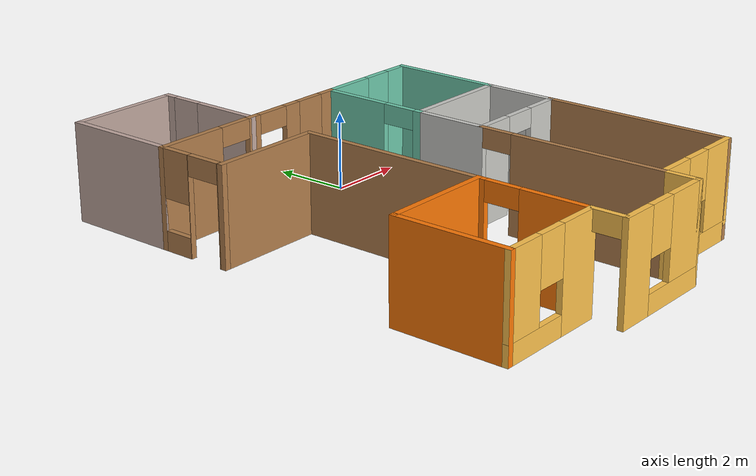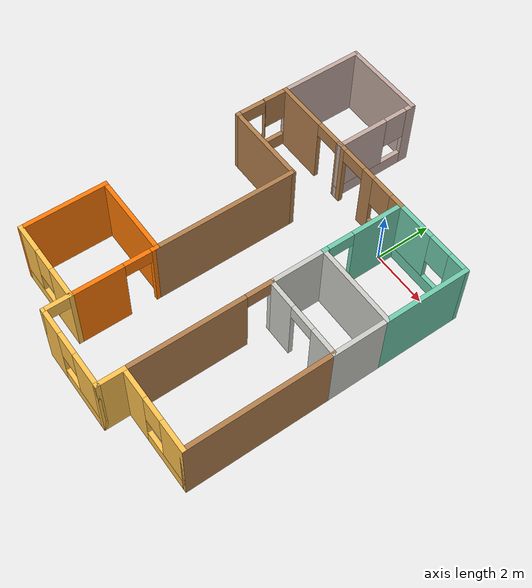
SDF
<?xml version='1.0'?>
<sdf version='1.6'>
  <model name='myBuilding'>
    <pose frame=''>-1.28727 -3.3563 0 0 -0 0</pose>
    <link name='Wall_1'>
      <pose frame=''>0 -6.625 0 0 -0 0</pose>
      <visual name='Wall_1_Visual_0'>
        <pose frame=''>-1.01471 0 1.25 0 -0 0</pose>
        <geometry>
          <box>
            <size>0.970584 0.15 2.5</size>
          </box>
        </geometry>
        <material>
          <script>
            <uri>file://media/materials/scripts/gazebo.material</uri>
            <name>Gazebo/Grey</name>
          </script>
          <ambient>1 0.764706 0.305882 1</ambient>
        </material>
        <meta>
          <layer>0</layer>
        </meta>
      </visual>
      <collision name='Wall_1_Collision_0'>
        <geometry>
          <box>
            <size>0.970584 0.15 2.5</size>
          </box>
        </geometry>
        <pose frame=''>-1.01471 0 1.25 0 -0 0</pose>
      </collision>
      <visual name='Wall_1_Visual_1'>
        <pose frame=''>0.485292 0 0.25 0 -0 0</pose>
        <geometry>
          <box>
            <size>2.02942 0.15 0.5</size>
          </box>
        </geometry>
        <material>
          <script>
            <uri>file://media/materials/scripts/gazebo.material</uri>
            <name>Gazebo/Grey</name>
          </script>
          <ambient>1 0.764706 0.305882 1</ambient>
        </material>
        <meta>
          <layer>0</layer>
        </meta>
      </visual>
      <collision name='Wall_1_Collision_1'>
        <geometry>
          <box>
            <size>2.02942 0.15 0.5</size>
          </box>
        </geometry>
        <pose frame=''>0.485292 0 0.25 0 -0 0</pose>
      </collision>
      <visual name='Wall_1_Visual_2'>
        <pose frame=''>0.885292 0 1.5 0 -0 0</pose>
        <geometry>
          <box>
            <size>1.22942 0.15 2</size>
          </box>
        </geometry>
        <material>
          <script>
            <uri>file://media/materials/scripts/gazebo.material</uri>
            <name>Gazebo/Grey</name>
          </script>
          <ambient>1 0.764706 0.305882 1</ambient>
        </material>
        <meta>
          <layer>0</layer>
        </meta>
      </visual>
      <collision name='Wall_1_Collision_2'>
        <geometry>
          <box>
            <size>1.22942 0.15 2</size>
          </box>
        </geometry>
        <pose frame=''>0.885292 0 1.5 0 -0 0</pose>
      </collision>
      <visual name='Wall_1_Visual_3'>
        <pose frame=''>-0.129416 0 1.9 0 -0 0</pose>
        <geometry>
          <box>
            <size>0.8 0.15 1.2</size>
          </box>
        </geometry>
        <material>
          <script>
            <uri>file://media/materials/scripts/gazebo.material</uri>
            <name>Gazebo/Grey</name>
          </script>
          <ambient>1 0.764706 0.305882 1</ambient>
        </material>
        <meta>
          <layer>0</layer>
        </meta>
      </visual>
      <collision name='Wall_1_Collision_3'>
        <geometry>
          <box>
            <size>0.8 0.15 1.2</size>
          </box>
        </geometry>
        <pose frame=''>-0.129416 0 1.9 0 -0 0</pose>
      </collision>
    </link>
    <link name='Wall_10'>
      <collision name='Wall_10_Collision'>
        <geometry>
          <box>
            <size>3 0.15 2.5</size>
          </box>
        </geometry>
        <pose frame=''>0 0 1.25 0 -0 0</pose>
      </collision>
      <visual name='Wall_10_Visual'>
        <pose frame=''>0 0 1.25 0 -0 0</pose>
        <geometry>
          <box>
            <size>3 0.15 2.5</size>
          </box>
        </geometry>
        <material>
          <script>
            <uri>file://media/materials/scripts/gazebo.material</uri>
            <name>Gazebo/CeilingTiled</name>
          </script>
          <ambient>1 1 1 1</ambient>
        </material>
        <meta>
          <layer>0</layer>
        </meta>
      </visual>
      <pose frame=''>2.85 0.925 0 0 -0 3.14159</pose>
    </link>
    <link name='Wall_11'>
      <collision name='Wall_11_Collision'>
        <geometry>
          <box>
            <size>2 0.15 2.5</size>
          </box>
        </geometry>
        <pose frame=''>0 0 1.25 0 -0 0</pose>
      </collision>
      <visual name='Wall_11_Visual'>
        <pose frame=''>0 0 1.25 0 -0 0</pose>
        <geometry>
          <box>
            <size>2 0.15 2.5</size>
          </box>
        </geometry>
        <material>
          <script>
            <uri>file://media/materials/scripts/gazebo.material</uri>
            <name>Gazebo/CeilingTiled</name>
          </script>
          <ambient>1 1 1 1</ambient>
        </material>
        <meta>
          <layer>0</layer>
        </meta>
      </visual>
      <pose frame=''>1.425 0 0 0 0 -1.5708</pose>
    </link>
    <link name='Wall_13'>
      <collision name='Wall_13_Collision'>
        <geometry>
          <box>
            <size>3 0.15 2.5</size>
          </box>
        </geometry>
        <pose frame=''>0 0 1.25 0 -0 0</pose>
      </collision>
      <visual name='Wall_13_Visual'>
        <pose frame=''>0 0 1.25 0 -0 0</pose>
        <geometry>
          <box>
            <size>3 0.15 2.5</size>
          </box>
        </geometry>
        <material>
          <script>
            <uri>file://media/materials/scripts/gazebo.material</uri>
            <name>Gazebo/Grey</name>
          </script>
          <ambient>0.435294 0.796078 0.67451 1</ambient>
        </material>
        <meta>
          <layer>0</layer>
        </meta>
      </visual>
      <pose frame=''>4.275 2.35 0 0 -0 1.5708</pose>
    </link>
    <link name='Wall_14'>
      <pose frame=''>2.85 3.775 0 0 -0 3.14159</pose>
      <visual name='Wall_14_Visual_0'>
        <pose frame=''>-1.12972 0 1.25 0 -0 0</pose>
        <geometry>
          <box>
            <size>0.740563 0.15 2.5</size>
          </box>
        </geometry>
        <material>
          <script>
            <uri>file://media/materials/scripts/gazebo.material</uri>
            <name>Gazebo/Grey</name>
          </script>
          <ambient>0.435294 0.796078 0.67451 1</ambient>
        </material>
        <meta>
          <layer>0</layer>
        </meta>
      </visual>
      <collision name='Wall_14_Collision_0'>
        <geometry>
          <box>
            <size>0.740563 0.15 2.5</size>
          </box>
        </geometry>
        <pose frame=''>-1.12972 0 1.25 0 -0 0</pose>
      </collision>
      <visual name='Wall_14_Visual_1'>
        <pose frame=''>0.370282 0 0.25 0 -0 0</pose>
        <geometry>
          <box>
            <size>2.25944 0.15 0.5</size>
          </box>
        </geometry>
        <material>
          <script>
            <uri>file://media/materials/scripts/gazebo.material</uri>
            <name>Gazebo/Grey</name>
          </script>
          <ambient>0.435294 0.796078 0.67451 1</ambient>
        </material>
        <meta>
          <layer>0</layer>
        </meta>
      </visual>
      <collision name='Wall_14_Collision_1'>
        <geometry>
          <box>
            <size>2.25944 0.15 0.5</size>
          </box>
        </geometry>
        <pose frame=''>0.370282 0 0.25 0 -0 0</pose>
      </collision>
      <visual name='Wall_14_Visual_2'>
        <pose frame=''>0.770282 0 1.5 0 -0 0</pose>
        <geometry>
          <box>
            <size>1.45944 0.15 2</size>
          </box>
        </geometry>
        <material>
          <script>
            <uri>file://media/materials/scripts/gazebo.material</uri>
            <name>Gazebo/Grey</name>
          </script>
          <ambient>0.435294 0.796078 0.67451 1</ambient>
        </material>
        <meta>
          <layer>0</layer>
        </meta>
      </visual>
      <collision name='Wall_14_Collision_2'>
        <geometry>
          <box>
            <size>1.45944 0.15 2</size>
          </box>
        </geometry>
        <pose frame=''>0.770282 0 1.5 0 -0 0</pose>
      </collision>
      <visual name='Wall_14_Visual_3'>
        <pose frame=''>-0.359437 0 1.9 0 -0 0</pose>
        <geometry>
          <box>
            <size>0.8 0.15 1.2</size>
          </box>
        </geometry>
        <material>
          <script>
            <uri>file://media/materials/scripts/gazebo.material</uri>
            <name>Gazebo/Grey</name>
          </script>
          <ambient>0.435294 0.796078 0.67451 1</ambient>
        </material>
        <meta>
          <layer>0</layer>
        </meta>
      </visual>
      <collision name='Wall_14_Collision_3'>
        <geometry>
          <box>
            <size>0.8 0.15 1.2</size>
          </box>
        </geometry>
        <pose frame=''>-0.359437 0 1.9 0 -0 0</pose>
      </collision>
    </link>
    <link name='Wall_15'>
      <pose frame=''>1.425 2.35 0 0 0 -1.5708</pose>
      <visual name='Wall_15_Visual_0'>
        <pose frame=''>-0.563237 0 1.25 0 -0 0</pose>
        <geometry>
          <box>
            <size>1.87353 0.15 2.5</size>
          </box>
        </geometry>
        <material>
          <script>
            <uri>file://media/materials/scripts/gazebo.material</uri>
            <name>Gazebo/Grey</name>
          </script>
          <ambient>0.435294 0.796078 0.67451 1</ambient>
        </material>
        <meta>
          <layer>0</layer>
        </meta>
      </visual>
      <collision name='Wall_15_Collision_0'>
        <geometry>
          <box>
            <size>1.87353 0.15 2.5</size>
          </box>
        </geometry>
        <pose frame=''>-0.563237 0 1.25 0 -0 0</pose>
      </collision>
      <visual name='Wall_15_Visual_1'>
        <pose frame=''>1.38676 0 1.25 0 -0 0</pose>
        <geometry>
          <box>
            <size>0.226475 0.15 2.5</size>
          </box>
        </geometry>
        <material>
          <script>
            <uri>file://media/materials/scripts/gazebo.material</uri>
            <name>Gazebo/Grey</name>
          </script>
          <ambient>0.435294 0.796078 0.67451 1</ambient>
        </material>
        <meta>
          <layer>0</layer>
        </meta>
      </visual>
      <collision name='Wall_15_Collision_1'>
        <geometry>
          <box>
            <size>0.226475 0.15 2.5</size>
          </box>
        </geometry>
        <pose frame=''>1.38676 0 1.25 0 -0 0</pose>
      </collision>
      <visual name='Wall_15_Visual_2'>
        <pose frame=''>0.823525 0 2.25 0 -0 0</pose>
        <geometry>
          <box>
            <size>0.9 0.15 0.5</size>
          </box>
        </geometry>
        <material>
          <script>
            <uri>file://media/materials/scripts/gazebo.material</uri>
            <name>Gazebo/Grey</name>
          </script>
          <ambient>0.435294 0.796078 0.67451 1</ambient>
        </material>
        <meta>
          <layer>0</layer>
        </meta>
      </visual>
      <collision name='Wall_15_Collision_2'>
        <geometry>
          <box>
            <size>0.9 0.15 0.5</size>
          </box>
        </geometry>
        <pose frame=''>0.823525 0 2.25 0 -0 0</pose>
      </collision>
    </link>
    <link name='Wall_17'>
      <pose frame=''>-1.425 -6.2 0 0 -0 1.5708</pose>
      <visual name='Wall_17_Visual_0'>
        <pose frame=''>-0.443398 0 1.25 0 -0 0</pose>
        <geometry>
          <box>
            <size>0.113204 0.15 2.5</size>
          </box>
        </geometry>
        <material>
          <script>
            <uri>file://media/materials/scripts/gazebo.material</uri>
            <name>Gazebo/Grey</name>
          </script>
          <ambient>1 0.764706 0.305882 1</ambient>
        </material>
        <meta>
          <layer>0</layer>
        </meta>
      </visual>
      <collision name='Wall_17_Collision_0'>
        <geometry>
          <box>
            <size>0.113204 0.15 2.5</size>
          </box>
        </geometry>
        <pose frame=''>-0.443398 0 1.25 0 -0 0</pose>
      </collision>
      <visual name='Wall_17_Visual_1'>
        <pose frame=''>0.056602 0 2.25 0 -0 0</pose>
        <geometry>
          <box>
            <size>0.886796 0.15 0.5</size>
          </box>
        </geometry>
        <material>
          <script>
            <uri>file://media/materials/scripts/gazebo.material</uri>
            <name>Gazebo/Grey</name>
          </script>
          <ambient>1 0.764706 0.305882 1</ambient>
        </material>
        <meta>
          <layer>0</layer>
        </meta>
      </visual>
      <collision name='Wall_17_Collision_1'>
        <geometry>
          <box>
            <size>0.886796 0.15 0.5</size>
          </box>
        </geometry>
        <pose frame=''>0.056602 0 2.25 0 -0 0</pose>
      </collision>
    </link>
    <link name='Wall_18'>
      <pose frame=''>-2.85 -5.775 0 0 -0 3.14159</pose>
      <visual name='Wall_18_Visual_0'>
        <pose frame=''>-0.922456 0 1.25 0 -0 0</pose>
        <geometry>
          <box>
            <size>1.15509 0.15 2.5</size>
          </box>
        </geometry>
        <material>
          <script>
            <uri>file://media/materials/scripts/gazebo.material</uri>
            <name>Gazebo/Grey</name>
          </script>
          <ambient>1 0.764706 0.305882 1</ambient>
        </material>
        <meta>
          <layer>0</layer>
        </meta>
      </visual>
      <collision name='Wall_18_Collision_0'>
        <geometry>
          <box>
            <size>1.15509 0.15 2.5</size>
          </box>
        </geometry>
        <pose frame=''>-0.922456 0 1.25 0 -0 0</pose>
      </collision>
      <visual name='Wall_18_Visual_1'>
        <pose frame=''>0.577544 0 0.25 0 -0 0</pose>
        <geometry>
          <box>
            <size>1.84491 0.15 0.5</size>
          </box>
        </geometry>
        <material>
          <script>
            <uri>file://media/materials/scripts/gazebo.material</uri>
            <name>Gazebo/Grey</name>
          </script>
          <ambient>1 0.764706 0.305882 1</ambient>
        </material>
        <meta>
          <layer>0</layer>
        </meta>
      </visual>
      <collision name='Wall_18_Collision_1'>
        <geometry>
          <box>
            <size>1.84491 0.15 0.5</size>
          </box>
        </geometry>
        <pose frame=''>0.577544 0 0.25 0 -0 0</pose>
      </collision>
      <visual name='Wall_18_Visual_2'>
        <pose frame=''>0.977544 0 1.5 0 -0 0</pose>
        <geometry>
          <box>
            <size>1.04491 0.15 2</size>
          </box>
        </geometry>
        <material>
          <script>
            <uri>file://media/materials/scripts/gazebo.material</uri>
            <name>Gazebo/Grey</name>
          </script>
          <ambient>1 0.764706 0.305882 1</ambient>
        </material>
        <meta>
          <layer>0</layer>
        </meta>
      </visual>
      <collision name='Wall_18_Collision_2'>
        <geometry>
          <box>
            <size>1.04491 0.15 2</size>
          </box>
        </geometry>
        <pose frame=''>0.977544 0 1.5 0 -0 0</pose>
      </collision>
      <visual name='Wall_18_Visual_3'>
        <pose frame=''>0.055089 0 1.9 0 -0 0</pose>
        <geometry>
          <box>
            <size>0.8 0.15 1.2</size>
          </box>
        </geometry>
        <material>
          <script>
            <uri>file://media/materials/scripts/gazebo.material</uri>
            <name>Gazebo/Grey</name>
          </script>
          <ambient>1 0.764706 0.305882 1</ambient>
        </material>
        <meta>
          <layer>0</layer>
        </meta>
      </visual>
      <collision name='Wall_18_Collision_3'>
        <geometry>
          <box>
            <size>0.8 0.15 1.2</size>
          </box>
        </geometry>
        <pose frame=''>0.055089 0 1.9 0 -0 0</pose>
      </collision>
    </link>
    <link name='Wall_19'>
      <collision name='Wall_19_Collision'>
        <geometry>
          <box>
            <size>3 0.15 2.5</size>
          </box>
        </geometry>
        <pose frame=''>0 0 1.25 0 -0 0</pose>
      </collision>
      <visual name='Wall_19_Visual'>
        <pose frame=''>0 0 1.25 0 -0 0</pose>
        <geometry>
          <box>
            <size>3 0.15 2.5</size>
          </box>
        </geometry>
        <material>
          <script>
            <uri>file://media/materials/scripts/gazebo.material</uri>
            <name>Gazebo/Grey</name>
          </script>
          <ambient>0.996078 0.47451 0.0196078 1</ambient>
        </material>
        <meta>
          <layer>0</layer>
        </meta>
      </visual>
      <pose frame=''>-4.275 -4.35 0 0 -0 1.5708</pose>
    </link>
    <link name='Wall_2'>
      <collision name='Wall_2_Collision'>
        <geometry>
          <box>
            <size>1 0.15 2.5</size>
          </box>
        </geometry>
        <pose frame=''>0 0 1.25 0 -0 0</pose>
      </collision>
      <visual name='Wall_2_Visual'>
        <pose frame=''>0 0 1.25 0 -0 0</pose>
        <geometry>
          <box>
            <size>1 0.15 2.5</size>
          </box>
        </geometry>
        <material>
          <script>
            <uri>file://media/materials/scripts/gazebo.material</uri>
            <name>Gazebo/Grey</name>
          </script>
          <ambient>1 0.764706 0.305882 1</ambient>
        </material>
        <meta>
          <layer>0</layer>
        </meta>
      </visual>
      <pose frame=''>1.425 -6.2 0 0 -0 1.5708</pose>
    </link>
    <link name='Wall_20'>
      <collision name='Wall_20_Collision'>
        <geometry>
          <box>
            <size>3 0.15 2.5</size>
          </box>
        </geometry>
        <pose frame=''>0 0 1.25 0 -0 0</pose>
      </collision>
      <visual name='Wall_20_Visual'>
        <pose frame=''>0 0 1.25 0 -0 0</pose>
        <geometry>
          <box>
            <size>3 0.15 2.5</size>
          </box>
        </geometry>
        <material>
          <script>
            <uri>file://media/materials/scripts/gazebo.material</uri>
            <name>Gazebo/Grey</name>
          </script>
          <ambient>0.996078 0.47451 0.0196078 1</ambient>
        </material>
        <meta>
          <layer>0</layer>
        </meta>
      </visual>
      <pose frame=''>-2.85 -2.925 0 0 -0 0</pose>
    </link>
    <link name='Wall_21'>
      <pose frame=''>-1.425 -4.35 0 0 0 -1.5708</pose>
      <visual name='Wall_21_Visual_0'>
        <pose frame=''>-1.35881 0 1.25 0 -0 0</pose>
        <geometry>
          <box>
            <size>0.282373 0.15 2.5</size>
          </box>
        </geometry>
        <material>
          <script>
            <uri>file://media/materials/scripts/gazebo.material</uri>
            <name>Gazebo/Grey</name>
          </script>
          <ambient>0.996078 0.47451 0.0196078 1</ambient>
        </material>
        <meta>
          <layer>0</layer>
        </meta>
      </visual>
      <collision name='Wall_21_Collision_0'>
        <geometry>
          <box>
            <size>0.282373 0.15 2.5</size>
          </box>
        </geometry>
        <pose frame=''>-1.35881 0 1.25 0 -0 0</pose>
      </collision>
      <visual name='Wall_21_Visual_1'>
        <pose frame=''>0.591186 0 1.25 0 -0 0</pose>
        <geometry>
          <box>
            <size>1.81763 0.15 2.5</size>
          </box>
        </geometry>
        <material>
          <script>
            <uri>file://media/materials/scripts/gazebo.material</uri>
            <name>Gazebo/Grey</name>
          </script>
          <ambient>0.996078 0.47451 0.0196078 1</ambient>
        </material>
        <meta>
          <layer>0</layer>
        </meta>
      </visual>
      <collision name='Wall_21_Collision_1'>
        <geometry>
          <box>
            <size>1.81763 0.15 2.5</size>
          </box>
        </geometry>
        <pose frame=''>0.591186 0 1.25 0 -0 0</pose>
      </collision>
      <visual name='Wall_21_Visual_2'>
        <pose frame=''>-0.767627 0 2.25 0 -0 0</pose>
        <geometry>
          <box>
            <size>0.9 0.15 0.5</size>
          </box>
        </geometry>
        <material>
          <script>
            <uri>file://media/materials/scripts/gazebo.material</uri>
            <name>Gazebo/Grey</name>
          </script>
          <ambient>0.996078 0.47451 0.0196078 1</ambient>
        </material>
        <meta>
          <layer>0</layer>
        </meta>
      </visual>
      <collision name='Wall_21_Collision_2'>
        <geometry>
          <box>
            <size>0.9 0.15 0.5</size>
          </box>
        </geometry>
        <pose frame=''>-0.767627 0 2.25 0 -0 0</pose>
      </collision>
    </link>
    <link name='Wall_24'>
      <collision name='Wall_24_Collision'>
        <geometry>
          <box>
            <size>5 0.15 2.5</size>
          </box>
        </geometry>
        <pose frame=''>0 0 1.25 0 -0 0</pose>
      </collision>
      <visual name='Wall_24_Visual'>
        <pose frame=''>0 0 1.25 0 -0 0</pose>
        <geometry>
          <box>
            <size>5 0.15 2.5</size>
          </box>
        </geometry>
        <material>
          <script>
            <uri>file://media/materials/scripts/gazebo.material</uri>
            <name>Gazebo/Wood</name>
          </script>
          <ambient>1 1 1 1</ambient>
        </material>
        <meta>
          <layer>0</layer>
        </meta>
      </visual>
      <pose frame=''>-1.425 -0.5 0 0 -0 1.5708</pose>
    </link>
    <link name='Wall_25'>
      <collision name='Wall_25_Collision'>
        <geometry>
          <box>
            <size>3 0.15 2.5</size>
          </box>
        </geometry>
        <pose frame=''>0 0 1.25 0 -0 0</pose>
      </collision>
      <visual name='Wall_25_Visual'>
        <pose frame=''>0 0 1.25 0 -0 0</pose>
        <geometry>
          <box>
            <size>3 0.15 2.5</size>
          </box>
        </geometry>
        <material>
          <script>
            <uri>file://media/materials/scripts/gazebo.material</uri>
            <name>Gazebo/Wood</name>
          </script>
          <ambient>1 1 1 1</ambient>
        </material>
        <meta>
          <layer>0</layer>
        </meta>
      </visual>
      <pose frame=''>-2.85 1.925 0 0 -0 3.14159</pose>
    </link>
    <link name='Wall_3'>
      <pose frame=''>2.85 -5.775 0 0 -0 0</pose>
      <visual name='Wall_3_Visual_0'>
        <pose frame=''>-0.941247 0 1.25 0 -0 0</pose>
        <geometry>
          <box>
            <size>1.11751 0.15 2.5</size>
          </box>
        </geometry>
        <material>
          <script>
            <uri>file://media/materials/scripts/gazebo.material</uri>
            <name>Gazebo/Grey</name>
          </script>
          <ambient>1 0.764706 0.305882 1</ambient>
        </material>
        <meta>
          <layer>0</layer>
        </meta>
      </visual>
      <collision name='Wall_3_Collision_0'>
        <geometry>
          <box>
            <size>1.11751 0.15 2.5</size>
          </box>
        </geometry>
        <pose frame=''>-0.941247 0 1.25 0 -0 0</pose>
      </collision>
      <visual name='Wall_3_Visual_1'>
        <pose frame=''>0.558753 0 0.25 0 -0 0</pose>
        <geometry>
          <box>
            <size>1.88249 0.15 0.5</size>
          </box>
        </geometry>
        <material>
          <script>
            <uri>file://media/materials/scripts/gazebo.material</uri>
            <name>Gazebo/Grey</name>
          </script>
          <ambient>1 0.764706 0.305882 1</ambient>
        </material>
        <meta>
          <layer>0</layer>
        </meta>
      </visual>
      <collision name='Wall_3_Collision_1'>
        <geometry>
          <box>
            <size>1.88249 0.15 0.5</size>
          </box>
        </geometry>
        <pose frame=''>0.558753 0 0.25 0 -0 0</pose>
      </collision>
      <visual name='Wall_3_Visual_2'>
        <pose frame=''>0.958753 0 1.5 0 -0 0</pose>
        <geometry>
          <box>
            <size>1.08249 0.15 2</size>
          </box>
        </geometry>
        <material>
          <script>
            <uri>file://media/materials/scripts/gazebo.material</uri>
            <name>Gazebo/Grey</name>
          </script>
          <ambient>1 0.764706 0.305882 1</ambient>
        </material>
        <meta>
          <layer>0</layer>
        </meta>
      </visual>
      <collision name='Wall_3_Collision_2'>
        <geometry>
          <box>
            <size>1.08249 0.15 2</size>
          </box>
        </geometry>
        <pose frame=''>0.958753 0 1.5 0 -0 0</pose>
      </collision>
      <visual name='Wall_3_Visual_3'>
        <pose frame=''>0.017506 0 1.9 0 -0 0</pose>
        <geometry>
          <box>
            <size>0.8 0.15 1.2</size>
          </box>
        </geometry>
        <material>
          <script>
            <uri>file://media/materials/scripts/gazebo.material</uri>
            <name>Gazebo/Grey</name>
          </script>
          <ambient>1 0.764706 0.305882 1</ambient>
        </material>
        <meta>
          <layer>0</layer>
        </meta>
      </visual>
      <collision name='Wall_3_Collision_3'>
        <geometry>
          <box>
            <size>0.8 0.15 1.2</size>
          </box>
        </geometry>
        <pose frame=''>0.017506 0 1.9 0 -0 0</pose>
      </collision>
    </link>
    <link name='Wall_30'>
      <pose frame=''>-4.275 2.85 0 0 -0 1.5708</pose>
      <visual name='Wall_30_Visual_0'>
        <pose frame=''>-0.914094 0 1.25 0 -0 0</pose>
        <geometry>
          <box>
            <size>0.171813 0.15 2.5</size>
          </box>
        </geometry>
        <material>
          <script>
            <uri>file://media/materials/scripts/gazebo.material</uri>
            <name>Gazebo/Wood</name>
          </script>
          <ambient>1 1 1 1</ambient>
        </material>
        <meta>
          <layer>0</layer>
        </meta>
      </visual>
      <collision name='Wall_30_Collision_0'>
        <geometry>
          <box>
            <size>0.171813 0.15 2.5</size>
          </box>
        </geometry>
        <pose frame=''>-0.914094 0 1.25 0 -0 0</pose>
      </collision>
      <visual name='Wall_30_Visual_1'>
        <pose frame=''>0.079254 0 1.25 0 -0 0</pose>
        <geometry>
          <box>
            <size>0.014884 0.15 2.5</size>
          </box>
        </geometry>
        <material>
          <script>
            <uri>file://media/materials/scripts/gazebo.material</uri>
            <name>Gazebo/Wood</name>
          </script>
          <ambient>1 1 1 1</ambient>
        </material>
        <meta>
          <layer>0</layer>
        </meta>
      </visual>
      <collision name='Wall_30_Collision_1'>
        <geometry>
          <box>
            <size>0.014884 0.15 2.5</size>
          </box>
        </geometry>
        <pose frame=''>0.079254 0 1.25 0 -0 0</pose>
      </collision>
      <visual name='Wall_30_Visual_2'>
        <pose frame=''>0.543348 0 0.25 0 -0 0</pose>
        <geometry>
          <box>
            <size>0.913304 0.15 0.5</size>
          </box>
        </geometry>
        <material>
          <script>
            <uri>file://media/materials/scripts/gazebo.material</uri>
            <name>Gazebo/Wood</name>
          </script>
          <ambient>1 1 1 1</ambient>
        </material>
        <meta>
          <layer>0</layer>
        </meta>
      </visual>
      <collision name='Wall_30_Collision_2'>
        <geometry>
          <box>
            <size>0.913304 0.15 0.5</size>
          </box>
        </geometry>
        <pose frame=''>0.543348 0 0.25 0 -0 0</pose>
      </collision>
      <visual name='Wall_30_Visual_3'>
        <pose frame=''>0.943348 0 1.5 0 -0 0</pose>
        <geometry>
          <box>
            <size>0.113304 0.15 2</size>
          </box>
        </geometry>
        <material>
          <script>
            <uri>file://media/materials/scripts/gazebo.material</uri>
            <name>Gazebo/Wood</name>
          </script>
          <ambient>1 1 1 1</ambient>
        </material>
        <meta>
          <layer>0</layer>
        </meta>
      </visual>
      <collision name='Wall_30_Collision_3'>
        <geometry>
          <box>
            <size>0.113304 0.15 2</size>
          </box>
        </geometry>
        <pose frame=''>0.943348 0 1.5 0 -0 0</pose>
      </collision>
      <visual name='Wall_30_Visual_4'>
        <pose frame=''>0.486696 0 1.9 0 -0 0</pose>
        <geometry>
          <box>
            <size>0.8 0.15 1.2</size>
          </box>
        </geometry>
        <material>
          <script>
            <uri>file://media/materials/scripts/gazebo.material</uri>
            <name>Gazebo/Wood</name>
          </script>
          <ambient>1 1 1 1</ambient>
        </material>
        <meta>
          <layer>0</layer>
        </meta>
      </visual>
      <collision name='Wall_30_Collision_4'>
        <geometry>
          <box>
            <size>0.8 0.15 1.2</size>
          </box>
        </geometry>
        <pose frame=''>0.486696 0 1.9 0 -0 0</pose>
      </collision>
      <visual name='Wall_30_Visual_5'>
        <pose frame=''>-0.378187 0 2.25 0 -0 0</pose>
        <geometry>
          <box>
            <size>0.9 0.15 0.5</size>
          </box>
        </geometry>
        <material>
          <script>
            <uri>file://media/materials/scripts/gazebo.material</uri>
            <name>Gazebo/Wood</name>
          </script>
          <ambient>1 1 1 1</ambient>
        </material>
        <meta>
          <layer>0</layer>
        </meta>
      </visual>
      <collision name='Wall_30_Collision_5'>
        <geometry>
          <box>
            <size>0.9 0.15 0.5</size>
          </box>
        </geometry>
        <pose frame=''>-0.378187 0 2.25 0 -0 0</pose>
      </collision>
    </link>
    <link name='Wall_31'>
      <pose frame=''>-1.425 3.775 0 0 -0 0</pose>
      <visual name='Wall_31_Visual_0'>
        <pose frame=''>-1.98505 0 1.25 0 -0 0</pose>
        <geometry>
          <box>
            <size>1.87991 0.15 2.5</size>
          </box>
        </geometry>
        <material>
          <script>
            <uri>file://media/materials/scripts/gazebo.material</uri>
            <name>Gazebo/Wood</name>
          </script>
          <ambient>1 1 1 1</ambient>
        </material>
        <meta>
          <layer>0</layer>
        </meta>
      </visual>
      <collision name='Wall_31_Collision_0'>
        <geometry>
          <box>
            <size>1.87991 0.15 2.5</size>
          </box>
        </geometry>
        <pose frame=''>-1.98505 0 1.25 0 -0 0</pose>
      </collision>
      <visual name='Wall_31_Visual_1'>
        <pose frame=''>0.048542 0 1.25 0 -0 0</pose>
        <geometry>
          <box>
            <size>0.387269 0.15 2.5</size>
          </box>
        </geometry>
        <material>
          <script>
            <uri>file://media/materials/scripts/gazebo.material</uri>
            <name>Gazebo/Wood</name>
          </script>
          <ambient>1 1 1 1</ambient>
        </material>
        <meta>
          <layer>0</layer>
        </meta>
      </visual>
      <collision name='Wall_31_Collision_1'>
        <geometry>
          <box>
            <size>0.387269 0.15 2.5</size>
          </box>
        </geometry>
        <pose frame=''>0.048542 0 1.25 0 -0 0</pose>
      </collision>
      <visual name='Wall_31_Visual_2'>
        <pose frame=''>1.38092 0 1.25 0 -0 0</pose>
        <geometry>
          <box>
            <size>0.477496 0.15 2.5</size>
          </box>
        </geometry>
        <material>
          <script>
            <uri>file://media/materials/scripts/gazebo.material</uri>
            <name>Gazebo/Wood</name>
          </script>
          <ambient>1 1 1 1</ambient>
        </material>
        <meta>
          <layer>0</layer>
        </meta>
      </visual>
      <collision name='Wall_31_Collision_2'>
        <geometry>
          <box>
            <size>0.477496 0.15 2.5</size>
          </box>
        </geometry>
        <pose frame=''>1.38092 0 1.25 0 -0 0</pose>
      </collision>
      <visual name='Wall_31_Visual_3'>
        <pose frame=''>2.27234 0 0.25 0 -0 0</pose>
        <geometry>
          <box>
            <size>1.30533 0.15 0.5</size>
          </box>
        </geometry>
        <material>
          <script>
            <uri>file://media/materials/scripts/gazebo.material</uri>
            <name>Gazebo/Wood</name>
          </script>
          <ambient>1 1 1 1</ambient>
        </material>
        <meta>
          <layer>0</layer>
        </meta>
      </visual>
      <collision name='Wall_31_Collision_3'>
        <geometry>
          <box>
            <size>1.30533 0.15 0.5</size>
          </box>
        </geometry>
        <pose frame=''>2.27234 0 0.25 0 -0 0</pose>
      </collision>
      <visual name='Wall_31_Visual_4'>
        <pose frame=''>2.67234 0 1.5 0 -0 0</pose>
        <geometry>
          <box>
            <size>0.505327 0.15 2</size>
          </box>
        </geometry>
        <material>
          <script>
            <uri>file://media/materials/scripts/gazebo.material</uri>
            <name>Gazebo/Wood</name>
          </script>
          <ambient>1 1 1 1</ambient>
        </material>
        <meta>
          <layer>0</layer>
        </meta>
      </visual>
      <collision name='Wall_31_Collision_4'>
        <geometry>
          <box>
            <size>0.505327 0.15 2</size>
          </box>
        </geometry>
        <pose frame=''>2.67234 0 1.5 0 -0 0</pose>
      </collision>
      <visual name='Wall_31_Visual_5'>
        <pose frame=''>2.01967 0 1.9 0 -0 0</pose>
        <geometry>
          <box>
            <size>0.8 0.15 1.2</size>
          </box>
        </geometry>
        <material>
          <script>
            <uri>file://media/materials/scripts/gazebo.material</uri>
            <name>Gazebo/Wood</name>
          </script>
          <ambient>1 1 1 1</ambient>
        </material>
        <meta>
          <layer>0</layer>
        </meta>
      </visual>
      <collision name='Wall_31_Collision_5'>
        <geometry>
          <box>
            <size>0.8 0.15 1.2</size>
          </box>
        </geometry>
        <pose frame=''>2.01967 0 1.9 0 -0 0</pose>
      </collision>
      <visual name='Wall_31_Visual_6'>
        <pose frame=''>-0.595092 0 2.25 0 -0 0</pose>
        <geometry>
          <box>
            <size>0.9 0.15 0.5</size>
          </box>
        </geometry>
        <material>
          <script>
            <uri>file://media/materials/scripts/gazebo.material</uri>
            <name>Gazebo/Wood</name>
          </script>
          <ambient>1 1 1 1</ambient>
        </material>
        <meta>
          <layer>0</layer>
        </meta>
      </visual>
      <collision name='Wall_31_Collision_6'>
        <geometry>
          <box>
            <size>0.9 0.15 0.5</size>
          </box>
        </geometry>
        <pose frame=''>-0.595092 0 2.25 0 -0 0</pose>
      </collision>
      <visual name='Wall_31_Visual_7'>
        <pose frame=''>0.692177 0 2.25 0 -0 0</pose>
        <geometry>
          <box>
            <size>0.9 0.15 0.5</size>
          </box>
        </geometry>
        <material>
          <script>
            <uri>file://media/materials/scripts/gazebo.material</uri>
            <name>Gazebo/Wood</name>
          </script>
          <ambient>1 1 1 1</ambient>
        </material>
        <meta>
          <layer>0</layer>
        </meta>
      </visual>
      <collision name='Wall_31_Collision_7'>
        <geometry>
          <box>
            <size>0.9 0.15 0.5</size>
          </box>
        </geometry>
        <pose frame=''>0.692177 0 2.25 0 -0 0</pose>
      </collision>
    </link>
    <link name='Wall_33'>
      <collision name='Wall_33_Collision'>
        <geometry>
          <box>
            <size>3 0.15 2.5</size>
          </box>
        </geometry>
        <pose frame=''>0 0 1.25 0 -0 0</pose>
      </collision>
      <visual name='Wall_33_Visual'>
        <pose frame=''>0 0 1.25 0 -0 0</pose>
        <geometry>
          <box>
            <size>3 0.15 2.5</size>
          </box>
        </geometry>
        <material>
          <script>
            <uri>file://media/materials/scripts/gazebo.material</uri>
            <name>Gazebo/Grey</name>
          </script>
          <ambient>0.760784 0.662745 0.627451 1</ambient>
        </material>
        <meta>
          <layer>0</layer>
        </meta>
      </visual>
      <pose frame=''>-4.275 5.2 0 0 -0 1.5708</pose>
    </link>
    <link name='Wall_34'>
      <collision name='Wall_34_Collision'>
        <geometry>
          <box>
            <size>3 0.15 2.5</size>
          </box>
        </geometry>
        <pose frame=''>0 0 1.25 0 -0 0</pose>
      </collision>
      <visual name='Wall_34_Visual'>
        <pose frame=''>0 0 1.25 0 -0 0</pose>
        <geometry>
          <box>
            <size>3 0.15 2.5</size>
          </box>
        </geometry>
        <material>
          <script>
            <uri>file://media/materials/scripts/gazebo.material</uri>
            <name>Gazebo/Grey</name>
          </script>
          <ambient>0.760784 0.662745 0.627451 1</ambient>
        </material>
        <meta>
          <layer>0</layer>
        </meta>
      </visual>
      <pose frame=''>-2.85 6.625 0 0 -0 0</pose>
    </link>
    <link name='Wall_35'>
      <pose frame=''>-1.425 5.2 0 0 0 -1.5708</pose>
      <visual name='Wall_35_Visual_0'>
        <pose frame=''>-1.31567 0 1.25 0 -0 0</pose>
        <geometry>
          <box>
            <size>0.368653 0.15 2.5</size>
          </box>
        </geometry>
        <material>
          <script>
            <uri>file://media/materials/scripts/gazebo.material</uri>
            <name>Gazebo/Grey</name>
          </script>
          <ambient>0.760784 0.662745 0.627451 1</ambient>
        </material>
        <meta>
          <layer>0</layer>
        </meta>
      </visual>
      <collision name='Wall_35_Collision_0'>
        <geometry>
          <box>
            <size>0.368653 0.15 2.5</size>
          </box>
        </geometry>
        <pose frame=''>-1.31567 0 1.25 0 -0 0</pose>
      </collision>
      <visual name='Wall_35_Visual_1'>
        <pose frame=''>0.184327 0 0.25 0 -0 0</pose>
        <geometry>
          <box>
            <size>2.63135 0.15 0.5</size>
          </box>
        </geometry>
        <material>
          <script>
            <uri>file://media/materials/scripts/gazebo.material</uri>
            <name>Gazebo/Grey</name>
          </script>
          <ambient>0.760784 0.662745 0.627451 1</ambient>
        </material>
        <meta>
          <layer>0</layer>
        </meta>
      </visual>
      <collision name='Wall_35_Collision_1'>
        <geometry>
          <box>
            <size>2.63135 0.15 0.5</size>
          </box>
        </geometry>
        <pose frame=''>0.184327 0 0.25 0 -0 0</pose>
      </collision>
      <visual name='Wall_35_Visual_2'>
        <pose frame=''>0.584327 0 1.5 0 -0 0</pose>
        <geometry>
          <box>
            <size>1.83135 0.15 2</size>
          </box>
        </geometry>
        <material>
          <script>
            <uri>file://media/materials/scripts/gazebo.material</uri>
            <name>Gazebo/Grey</name>
          </script>
          <ambient>0.760784 0.662745 0.627451 1</ambient>
        </material>
        <meta>
          <layer>0</layer>
        </meta>
      </visual>
      <collision name='Wall_35_Collision_2'>
        <geometry>
          <box>
            <size>1.83135 0.15 2</size>
          </box>
        </geometry>
        <pose frame=''>0.584327 0 1.5 0 -0 0</pose>
      </collision>
      <visual name='Wall_35_Visual_3'>
        <pose frame=''>-0.731347 0 1.9 0 -0 0</pose>
        <geometry>
          <box>
            <size>0.8 0.15 1.2</size>
          </box>
        </geometry>
        <material>
          <script>
            <uri>file://media/materials/scripts/gazebo.material</uri>
            <name>Gazebo/Grey</name>
          </script>
          <ambient>0.760784 0.662745 0.627451 1</ambient>
        </material>
        <meta>
          <layer>0</layer>
        </meta>
      </visual>
      <collision name='Wall_35_Collision_3'>
        <geometry>
          <box>
            <size>0.8 0.15 1.2</size>
          </box>
        </geometry>
        <pose frame=''>-0.731347 0 1.9 0 -0 0</pose>
      </collision>
    </link>
    <link name='Wall_5'>
      <collision name='Wall_5_Collision'>
        <geometry>
          <box>
            <size>5 0.15 2.5</size>
          </box>
        </geometry>
        <pose frame=''>0 0 1.25 0 -0 0</pose>
      </collision>
      <visual name='Wall_5_Visual'>
        <pose frame=''>0 0 1.25 0 -0 0</pose>
        <geometry>
          <box>
            <size>5 0.15 2.5</size>
          </box>
        </geometry>
        <material>
          <script>
            <uri>file://media/materials/scripts/gazebo.material</uri>
            <name>Gazebo/Wood</name>
          </script>
          <ambient>1 1 1 1</ambient>
        </material>
        <meta>
          <layer>0</layer>
        </meta>
      </visual>
      <pose frame=''>4.275 -3.35 0 0 -0 1.5708</pose>
    </link>
    <link name='Wall_6'>
      <pose frame=''>2.85 -0.925 0 0 -0 3.14159</pose>
      <visual name='Wall_6_Visual_0'>
        <pose frame=''>-0.99381 0 1.25 0 -0 0</pose>
        <geometry>
          <box>
            <size>1.01238 0.15 2.5</size>
          </box>
        </geometry>
        <material>
          <script>
            <uri>file://media/materials/scripts/gazebo.material</uri>
            <name>Gazebo/CeilingTiled</name>
          </script>
          <ambient>1 1 1 1</ambient>
        </material>
        <meta>
          <layer>0</layer>
        </meta>
      </visual>
      <collision name='Wall_6_Collision_0'>
        <geometry>
          <box>
            <size>1.01238 0.15 2.5</size>
          </box>
        </geometry>
        <pose frame=''>-0.99381 0 1.25 0 -0 0</pose>
      </collision>
      <visual name='Wall_6_Visual_1'>
        <pose frame=''>0.95619 0 1.25 0 -0 0</pose>
        <geometry>
          <box>
            <size>1.08762 0.15 2.5</size>
          </box>
        </geometry>
        <material>
          <script>
            <uri>file://media/materials/scripts/gazebo.material</uri>
            <name>Gazebo/CeilingTiled</name>
          </script>
          <ambient>1 1 1 1</ambient>
        </material>
        <meta>
          <layer>0</layer>
        </meta>
      </visual>
      <collision name='Wall_6_Collision_1'>
        <geometry>
          <box>
            <size>1.08762 0.15 2.5</size>
          </box>
        </geometry>
        <pose frame=''>0.95619 0 1.25 0 -0 0</pose>
      </collision>
      <visual name='Wall_6_Visual_2'>
        <pose frame=''>-0.03762 0 2.25 0 -0 0</pose>
        <geometry>
          <box>
            <size>0.9 0.15 0.5</size>
          </box>
        </geometry>
        <material>
          <script>
            <uri>file://media/materials/scripts/gazebo.material</uri>
            <name>Gazebo/CeilingTiled</name>
          </script>
          <ambient>1 1 1 1</ambient>
        </material>
        <meta>
          <layer>0</layer>
        </meta>
      </visual>
      <collision name='Wall_6_Collision_2'>
        <geometry>
          <box>
            <size>0.9 0.15 0.5</size>
          </box>
        </geometry>
        <pose frame=''>-0.03762 0 2.25 0 -0 0</pose>
      </collision>
    </link>
    <link name='Wall_7'>
      <pose frame=''>1.425 -3.35 0 0 0 -1.5708</pose>
      <visual name='Wall_7_Visual_0'>
        <pose frame=''>-2.47512 0 1.25 0 -0 0</pose>
        <geometry>
          <box>
            <size>0.049766 0.15 2.5</size>
          </box>
        </geometry>
        <material>
          <script>
            <uri>file://media/materials/scripts/gazebo.material</uri>
            <name>Gazebo/Wood</name>
          </script>
          <ambient>1 1 1 1</ambient>
        </material>
        <meta>
          <layer>0</layer>
        </meta>
      </visual>
      <collision name='Wall_7_Collision_0'>
        <geometry>
          <box>
            <size>0.049766 0.15 2.5</size>
          </box>
        </geometry>
        <pose frame=''>-2.47512 0 1.25 0 -0 0</pose>
      </collision>
      <visual name='Wall_7_Visual_1'>
        <pose frame=''>0.474883 0 1.25 0 -0 0</pose>
        <geometry>
          <box>
            <size>4.05023 0.15 2.5</size>
          </box>
        </geometry>
        <material>
          <script>
            <uri>file://media/materials/scripts/gazebo.material</uri>
            <name>Gazebo/Wood</name>
          </script>
          <ambient>1 1 1 1</ambient>
        </material>
        <meta>
          <layer>0</layer>
        </meta>
      </visual>
      <collision name='Wall_7_Collision_1'>
        <geometry>
          <box>
            <size>4.05023 0.15 2.5</size>
          </box>
        </geometry>
        <pose frame=''>0.474883 0 1.25 0 -0 0</pose>
      </collision>
      <visual name='Wall_7_Visual_2'>
        <pose frame=''>-2.00023 0 2.25 0 -0 0</pose>
        <geometry>
          <box>
            <size>0.9 0.15 0.5</size>
          </box>
        </geometry>
        <material>
          <script>
            <uri>file://media/materials/scripts/gazebo.material</uri>
            <name>Gazebo/Wood</name>
          </script>
          <ambient>1 1 1 1</ambient>
        </material>
        <meta>
          <layer>0</layer>
        </meta>
      </visual>
      <collision name='Wall_7_Collision_2'>
        <geometry>
          <box>
            <size>0.9 0.15 0.5</size>
          </box>
        </geometry>
        <pose frame=''>-2.00023 0 2.25 0 -0 0</pose>
      </collision>
    </link>
    <link name='Wall_9'>
      <collision name='Wall_9_Collision'>
        <geometry>
          <box>
            <size>2 0.15 2.5</size>
          </box>
        </geometry>
        <pose frame=''>0 0 1.25 0 -0 0</pose>
      </collision>
      <visual name='Wall_9_Visual'>
        <pose frame=''>0 0 1.25 0 -0 0</pose>
        <geometry>
          <box>
            <size>2 0.15 2.5</size>
          </box>
        </geometry>
        <material>
          <script>
            <uri>file://media/materials/scripts/gazebo.material</uri>
            <name>Gazebo/CeilingTiled</name>
          </script>
          <ambient>1 1 1 1</ambient>
        </material>
        <meta>
          <layer>0</layer>
        </meta>
      </visual>
      <pose frame=''>4.275 0 0 0 -0 1.5708</pose>
    </link>
    <static>1</static>
  </model>
</sdf>
